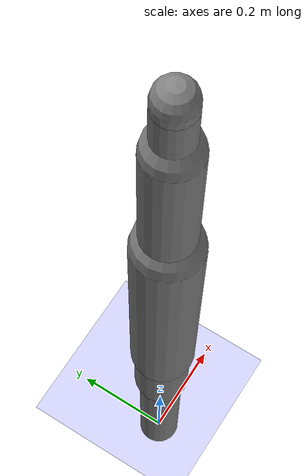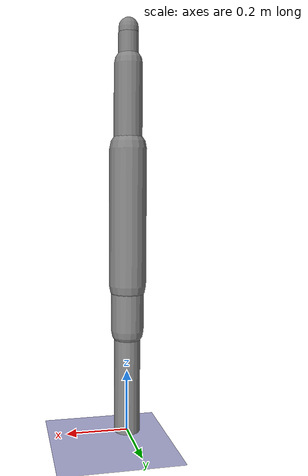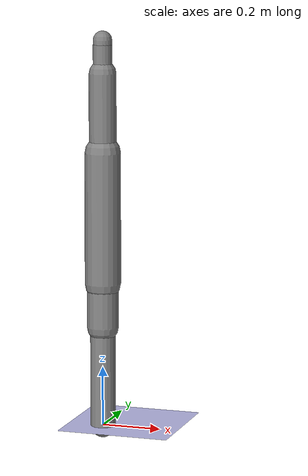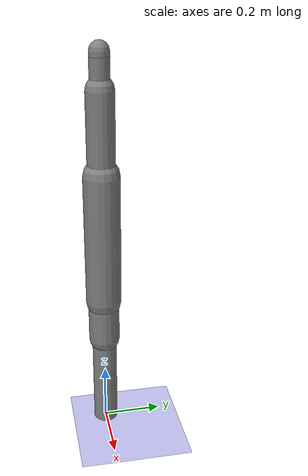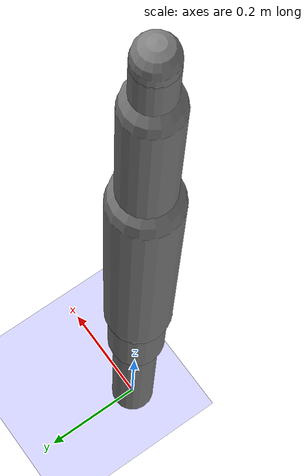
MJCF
<?xml version='1.0' encoding='UTF-8'?>
<mujoco model="robot_model">
  <worldbody>
    <light name="light" pos="0 -3 10" dir="0 0.5 -1" diffuse=".8 .8 .8" specular="0.1 0.1 0.1"/>
    <geom name="floor" type="plane" size="10.0 10.0 0.1" pos="0 0 0" rgba="0.8 0.8 1 1" contype="2" conaffinity="1"/>
    <body name="limb0" pos="0 0 0">
      <geom type="capsule" fromto="0 0 0 0 0 0.35274150995108977" size="0.04242583812992977" density="834.3214378522529" contype="1" conaffinity="2"/>
      <site type="sphere" size="0.01" name="limb0_site0" pos="0 0 0.33701385182817456"/>
      <site type="sphere" size="0.01" name="limb0_site1" pos="0 0 0.16788551213266456"/>
      <freejoint name="limb0_root"/>
      <body name="limb1" pos="0 0 0.33701385182817456">
        <geom type="capsule" fromto="0 0 0 0 0 0.372274530228085" size="0.052960072305996767" density="1069.5549891432568" contype="1" conaffinity="2"/>
        <site type="sphere" size="0.01" name="limb1_site0" pos="0 0 0.3510937104285415"/>
        <site type="sphere" size="0.01" name="limb1_site1" pos="0 0 0.14841410323054866"/>
        <body name="limb2" pos="0 0 0.3510937104285415">
          <geom type="capsule" fromto="0 0 0 0 0 0.5" size="0.045329815490319995" density="1017.2531489540214" contype="1" conaffinity="2"/>
          <site type="sphere" size="0.01" name="limb2_site0" pos="0 0 0.4184954227447958"/>
          <site type="sphere" size="0.01" name="limb2_site1" pos="0 0 0.32495363862035115"/>
          <body name="limb3" pos="0 0 0.4184954227447958">
            <geom type="capsule" fromto="0 0 0 0 0 0.19166066799868264" size="0.0314707546179414" density="956.2416848734547" contype="1" conaffinity="2"/>
            <joint name="joint_limb2_limb3_0" type="hinge" axis="0 1 0" range="-39.54825129765963 39.54825129765963" damping="5.0"/>
          </body>
          <body name="limb4" pos="0 0 0.32495363862035115">
            <geom type="capsule" fromto="0 0 0 0 0 0.27011232024080534" size="0.031637442744265755" density="589.1885420939519" contype="1" conaffinity="2"/>
            <joint name="joint_limb2_limb4_0" type="hinge" axis="0 1 0" range="-97.4408151263812 97.4408151263812" damping="5.0"/>
          </body>
          <joint name="joint_limb1_limb2_0" type="hinge" axis="0 1 0" range="-60.504894728636025 60.504894728636025" damping="5.0"/>
        </body>
        <body name="limb5" pos="0 0 0.14841410323054866">
          <geom type="capsule" fromto="0 0 0 0 0 0.4395241174791506" size="0.06" density="835.0249507936275" contype="1" conaffinity="2"/>
          <joint name="joint_limb1_limb5_0" type="hinge" axis="0 0 1" range="-72.8282440056993 72.8282440056993" damping="5.0"/>
        </body>
        <joint name="joint_limb0_limb1_0" type="hinge" axis="0 1 0" range="-109.19092787781891 109.19092787781891" damping="5.0"/>
      </body>
      <body name="limb6" pos="0 0 0.16788551213266456">
        <geom type="capsule" fromto="0 0 0 0 0 0.43647014061798706" size="0.041248644928393044" density="789.216346642524" contype="1" conaffinity="2"/>
        <joint name="joint_limb0_limb6_0" type="hinge" axis="0 0 1" range="-45.82744000775369 45.82744000775369" damping="5.0"/>
      </body>
    </body>
  </worldbody>
  <actuator>
    <position name="position_actuator_joint_limb0_limb1_0" joint="joint_limb0_limb1_0" gear="1.9782617184435591" inheritrange="1" forcerange="-20.869594355142794 20.869594355142794" forcelimited="true" kp="100.0"/>
    <position name="position_actuator_joint_limb1_limb2_0" joint="joint_limb1_limb2_0" gear="1.855224638398584" inheritrange="1" forcerange="-18.401183504925072 18.401183504925072" forcelimited="true" kp="100.0"/>
    <position name="position_actuator_joint_limb2_limb3_0" joint="joint_limb2_limb3_0" gear="1.9577561249166682" inheritrange="1" forcerange="-3.4754816031092273 3.4754816031092273" forcelimited="true" kp="100.0"/>
    <position name="position_actuator_joint_limb2_limb4_0" joint="joint_limb2_limb4_0" gear="0.9592737602053503" inheritrange="1" forcerange="-2.8929621242807704 2.8929621242807704" forcelimited="true" kp="100.0"/>
    <position name="position_actuator_joint_limb1_limb5_0" joint="joint_limb1_limb5_0" gear="0.8397505935235454" inheritrange="1" forcerange="-24.531694271366895 24.531694271366895" forcelimited="true" kp="100.0"/>
    <position name="position_actuator_joint_limb0_limb6_0" joint="joint_limb0_limb6_0" gear="0.7342032220860385" inheritrange="1" forcerange="-10.36646920093445 10.36646920093445" forcelimited="true" kp="100.0"/>
  </actuator>
</mujoco>
